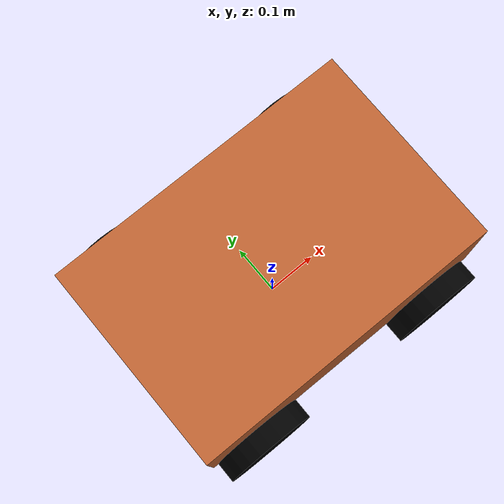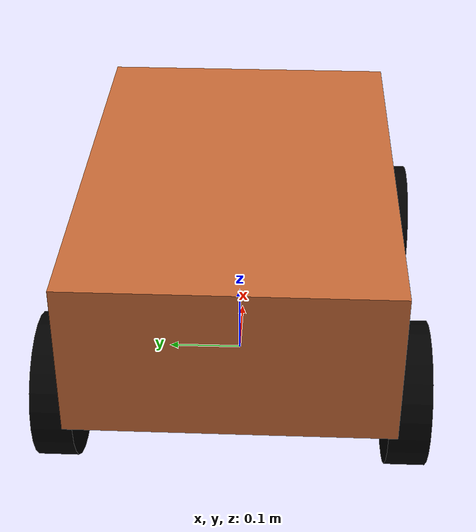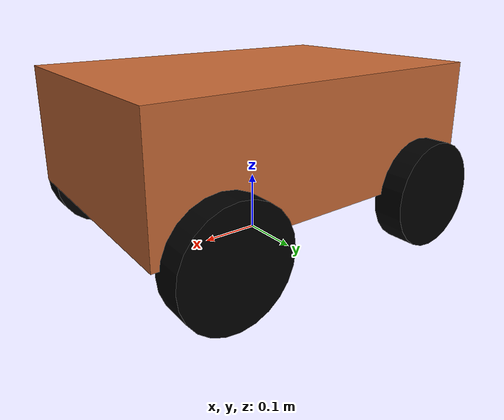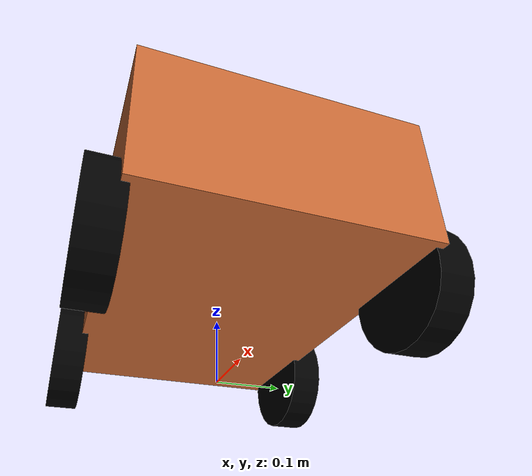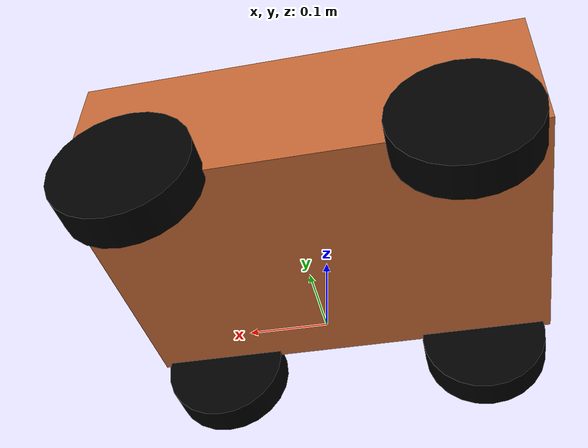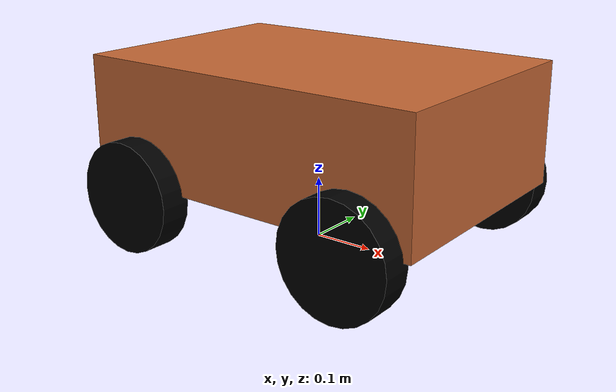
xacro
<?xml version="1.0"?>
<robot name="rover" xmlns:xacro="http://www.ros.org/wiki/xacro">
  <!-- geometry -->
  <xacro:property name="bx" value="0.6"/>
  <xacro:property name="by" value="0.4"/>
  <xacro:property name="bz" value="0.2"/>
  <xacro:property name="rw" value="0.09"/>  <!-- wheel radius -->
  <xacro:property name="tw" value="0.05"/>  <!-- wheel thickness -->

  <!-- fine placement -->
  <xacro:property name="gap_y"  value="0.01"/>
  <xacro:property name="gap_x"  value="0.01"/>
  <xacro:property name="clear"  value="0.01"/>
  <xacro:property name="axle_z" value="${rw}"/>
  <xacro:property name="wheel_x" value="${bx/2 - rw - gap_x}"/>
  <xacro:property name="wheel_y" value="${by/2 + tw/2 - gap_y}"/>

  <!-- import -->
  <xacro:include filename="wheel.xacro"/>

  <!-- chassis -->
  <link name="base_link">
    <visual>
      <origin xyz="0 0 ${axle_z + clear + bz/2}"/>
      <geometry><box size="${bx} ${by} ${bz}"/></geometry>
      <material name="argile"><color rgba="0.78 0.41 0.21 1"/></material>
    </visual>
    <collision>
      <origin xyz="0 0 ${axle_z + clear + bz/2}"/>
      <geometry><box size="${bx} ${by} ${bz}"/></geometry>
    </collision>
    <inertial>
      <mass value="8.0"/>
      <origin xyz="0 0 ${axle_z + clear + bz/2}"/>
      <inertia ixx="0.2" iyy="0.2" izz="0.2" ixy="0" ixz="0" iyz="0"/>
    </inertial>
  </link>

  <!-- 4 wheels -->
  <xacro:wheel name="wheel_fl" x="${ wheel_x}" y="${ wheel_y}"  z="${axle_z}" radius="${rw}" width="${tw}"/>
  <xacro:wheel name="wheel_fr" x="${ wheel_x}" y="${-wheel_y}" z="${axle_z}" radius="${rw}" width="${tw}"/>
  <xacro:wheel name="wheel_rl" x="${-wheel_x}" y="${ wheel_y}"  z="${axle_z}" radius="${rw}" width="${tw}"/>
  <xacro:wheel name="wheel_rr" x="${-wheel_x}" y="${-wheel_y}" z="${axle_z}" radius="${rw}" width="${tw}"/>

  <!-- Ignition Fortress diff drive plugin -->
  <gazebo>
    <plugin
      filename="libignition-gazebo-diff-drive-system.so"
      name="ignition::gazebo::systems::DiffDrive">

      <!-- left wheels -->
      <left_joint>wheel_fl_joint</left_joint>
      <left_joint>wheel_rl_joint</left_joint>

      <!-- right wheels -->
      <right_joint>wheel_fr_joint</right_joint>
      <right_joint>wheel_rr_joint</right_joint>

      <wheel_separation>${2*wheel_y}</wheel_separation>
      <wheel_radius>${rw}</wheel_radius>

      <!-- Gazebo Transport cmd_vel -->
      <topic>/model/rover/cmd_vel</topic>
    </plugin>
  </gazebo>

</robot>

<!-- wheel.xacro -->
<robot xmlns:xacro="http://www.ros.org/wiki/xacro">
  <xacro:macro name="wheel" params="name x y z radius width">
    <link name="${name}">
      <visual>
        <origin xyz="0 0 0" rpy="1.5708 0 0"/>
        <geometry><cylinder radius="${radius}" length="${width}"/></geometry>
        <material name="black"><color rgba="0.0 0.0 0.0 1"/></material>
      </visual>
      <collision>
        <origin xyz="0 0 0" rpy="1.5708 0 0"/>
        <geometry><cylinder radius="${radius}" length="${width}"/></geometry>
      </collision>
      <inertial>
        <mass value="0.3"/>
        <inertia ixx="0.001" iyy="0.001" izz="0.001" ixy="0" ixz="0" iyz="0"/>
      </inertial>
    </link>
    <joint name="${name}_joint" type="continuous">
      <parent link="base_link"/>
      <child link="${name}"/>
      <origin xyz="${x} ${y} ${z}"/>
      <axis xyz="0 1 0"/>
    </joint>
    <gazebo reference="${name}">
      <mu1>3.0</mu1>
      <mu2>3.0</mu2>
    </gazebo>
  </xacro:macro>
</robot>
